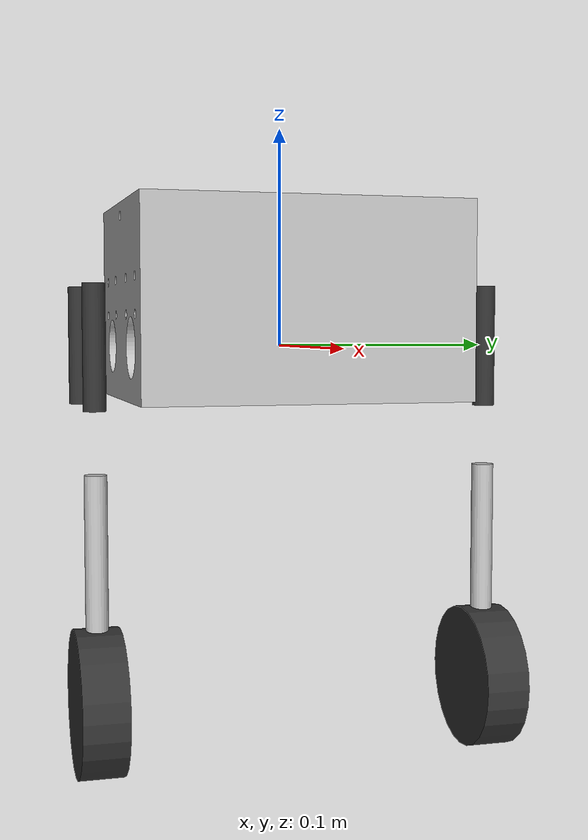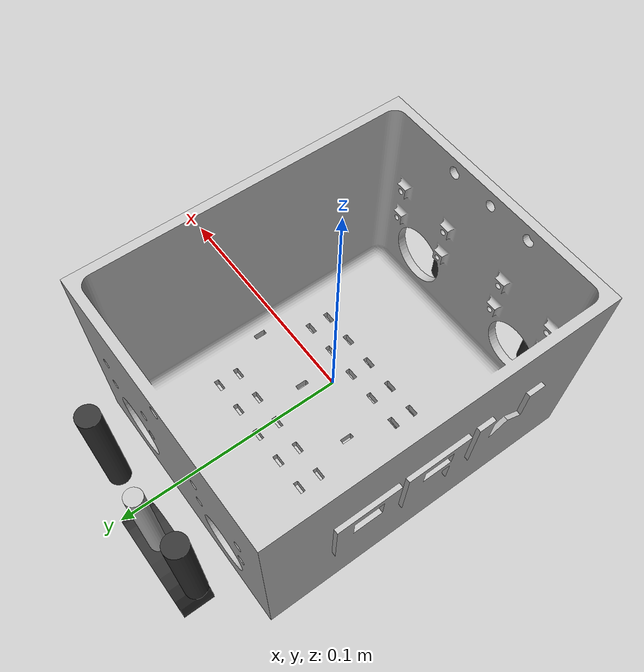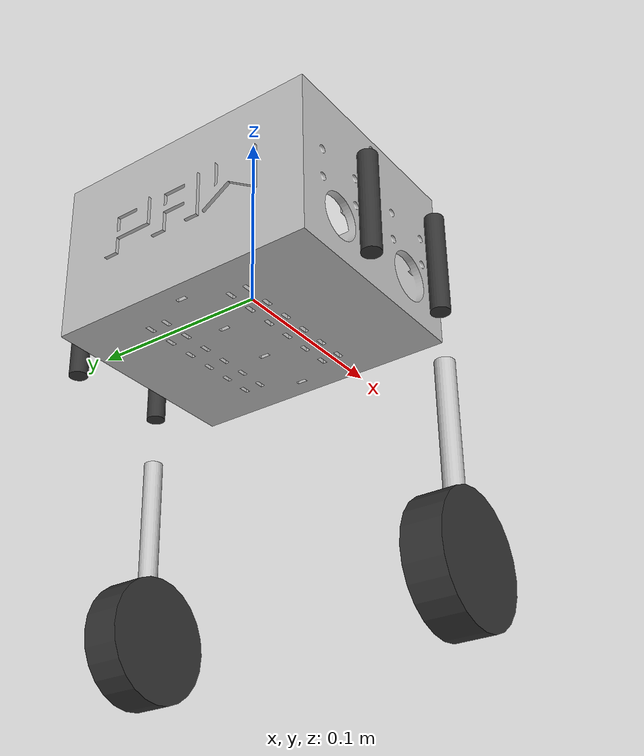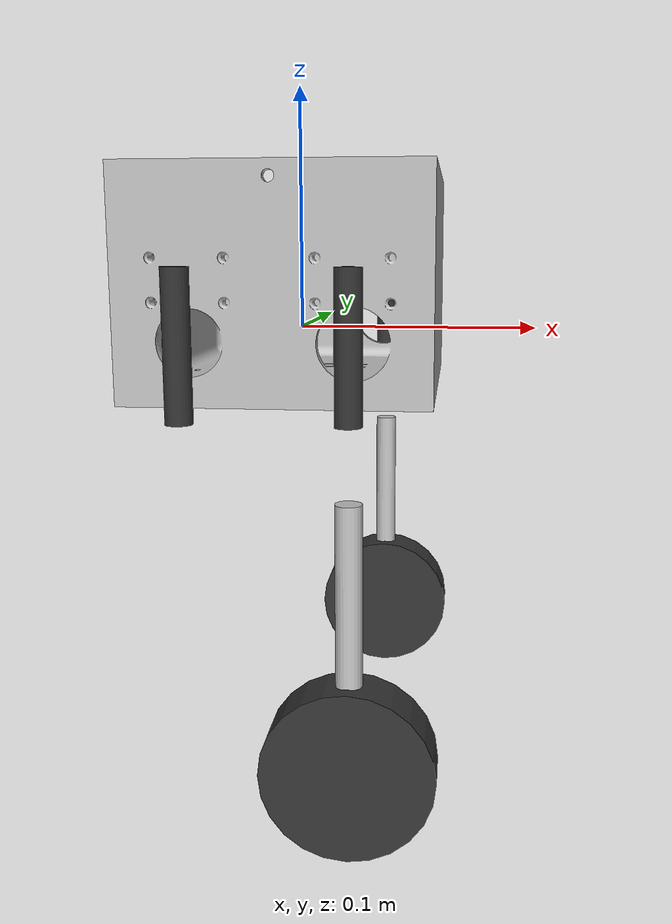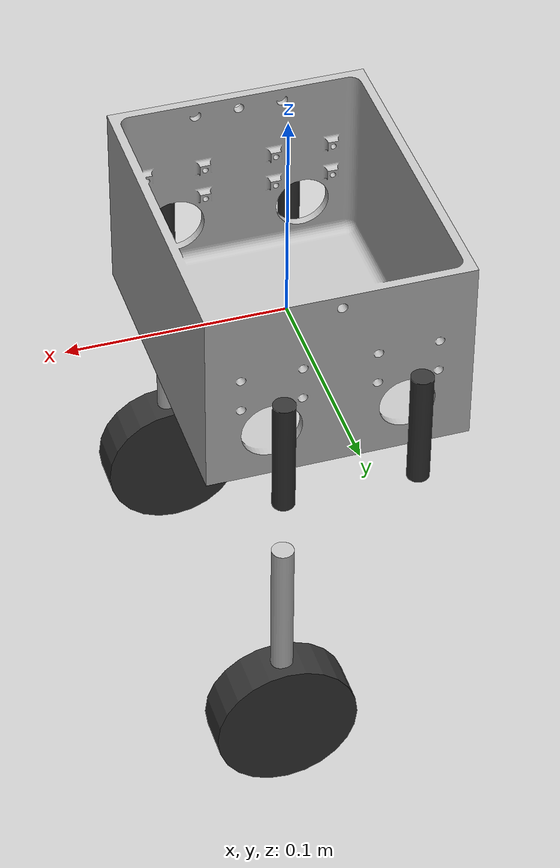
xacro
<?xml version="1.0" ?>
<robot name="bipedal" xmlns:xacro="http://www.ros.org/wiki/xacro">

  <!-- Materials -->
  <material name="silver">
    <color rgba="0.75 0.75 0.75 1.0"/>
  </material>

  <material name="dark_grey">
    <color rgba="0.2 0.2 0.2 1.0"/>
  </material>

  <!-- Base Link (Center of the robot) -->
  <link name="base_link">
    <inertial>
      <origin xyz="0 0 0.05" rpy="0 0 0"/>
      <mass value="0.3"/> <!-- 300g 3D printed body -->
      <inertia ixx="0.001" iyy="0.001" izz="0.001" ixy="0" iyz="0" ixz="0"/>
    </inertial>
    <visual>
      <!-- CAD origin was approx X=0.0535, Y=0.025, Z=-0.081 -->
      <!-- We rotate by -90 deg around Z to match ROS coords -->
      <origin xyz="-0.025 0.0535 0.081" rpy="0 0 -1.570796"/>
      <geometry>
        <mesh filename="package://bipedal_export_temp_description/meshes/base_link.stl" scale="0.001 0.001 0.001"/>
      </geometry>
      <material name="silver"/>
    </visual>
  </link>

  <!-- Battery -->
  <link name="battery">
    <inertial>
      <origin xyz="0 0 0" rpy="0 0 0"/>
      <mass value="0.260"/>
      <inertia ixx="0.0001" iyy="0.0001" izz="0.0001" ixy="0" iyz="0" ixz="0"/>
    </inertial>
  </link>
  <joint name="battery_joint" type="fixed">
    <origin xyz="0 0 -0.03" rpy="0 0 0"/> <!-- Below servo box -->
    <parent link="base_link"/>
    <child link="battery"/>
  </joint>

  <!-- Macro for Leg linkages -->
  <!-- Note: We only attach the femur and tibia to the FRONT servos to break the closed loop in URDF. -->
  <!-- The BACK servos are included but left unconnected to the tibia to satisfy the URDF tree requirement. -->

  <xacro:macro name="biped_leg" params="prefix side_y femur_mesh_front femur_mesh_back tibia_mesh">

    <!-- BACK SERVO (Left in local solver frame) -->
    <link name="${prefix}_back_servo">
      <inertial>
        <mass value="0.0535"/>
        <inertia ixx="0.00001" iyy="0.00001" izz="0.00001" ixy="0" iyz="0" ixz="0"/>
      </inertial>
    </link>
    <joint name="${prefix}_back_servo_joint" type="revolute">
      <!-- Back servo is at X=-30mm -->
      <origin xyz="-0.03 ${side_y} 0.0" rpy="0 0 0"/>
      <parent link="base_link"/>
      <child link="${prefix}_back_servo"/>
      <axis xyz="0 1 0"/>
      <limit lower="-3.14" upper="3.14" effort="10.0" velocity="5.0"/>
    </joint>

    <!-- FRONT SERVO (Right in local solver frame) -->
    <link name="${prefix}_front_servo">
      <inertial>
        <mass value="0.0535"/>
        <inertia ixx="0.00001" iyy="0.00001" izz="0.00001" ixy="0" iyz="0" ixz="0"/>
      </inertial>
    </link>
    <joint name="${prefix}_front_servo_joint" type="revolute">
      <!-- Front servo is at X=30mm -->
      <origin xyz="0.03 ${side_y} 0.0" rpy="0 0 0"/>
      <parent link="base_link"/>
      <child link="${prefix}_front_servo"/>
      <axis xyz="0 1 0"/>
      <limit lower="-3.14" upper="3.14" effort="10.0" velocity="5.0"/>
    </joint>

    <!-- BACK FEMUR -->
    <link name="${prefix}_back_femur">
      <inertial>
        <mass value="0.040"/>
        <inertia ixx="0.00001" iyy="0.00001" izz="0.00001" ixy="0" iyz="0" ixz="0"/>
      </inertial>
      <visual>
        <!-- Offset to rotate visual to match new coordinates -->
        <origin xyz="0 0 0" rpy="0 0 -1.570796"/>
        <geometry>
          <cylinder radius="0.005" length="0.055"/>
        </geometry>
        <material name="dark_grey"/>
      </visual>
    </link>
    <joint name="${prefix}_back_femur_joint" type="fixed">
      <origin xyz="0 0 0" rpy="0 0 0"/>
      <parent link="${prefix}_back_servo"/>
      <child link="${prefix}_back_femur"/>
    </joint>

    <!-- FRONT FEMUR -->
    <link name="${prefix}_front_femur">
      <inertial>
        <mass value="0.040"/>
        <inertia ixx="0.00001" iyy="0.00001" izz="0.00001" ixy="0" iyz="0" ixz="0"/>
      </inertial>
      <visual>
        <origin xyz="0 0 0" rpy="0 0 -1.570796"/>
        <geometry>
          <cylinder radius="0.005" length="0.055"/>
        </geometry>
        <material name="dark_grey"/>
      </visual>
    </link>
    <joint name="${prefix}_front_femur_joint" type="fixed">
      <origin xyz="0 0 0" rpy="0 0 0"/>
      <parent link="${prefix}_front_servo"/>
      <child link="${prefix}_front_femur"/>
    </joint>

    <!-- TIBIA (Attached to Front Femur to avoid closed loop) -->
    <link name="${prefix}_tibia">
      <inertial>
        <mass value="0.100"/>
        <inertia ixx="0.0001" iyy="0.0001" izz="0.0001" ixy="0" iyz="0" ixz="0"/>
      </inertial>
      <visual>
        <origin xyz="0 0 -0.05" rpy="0 0 0"/>
        <geometry>
          <cylinder radius="0.005" length="0.100"/>
        </geometry>
        <material name="silver"/>
      </visual>
    </link>
    <!-- Knee Joint connects front femur to tibia -->
    <joint name="${prefix}_knee_joint" type="revolute">
      <!-- Upper link is 55mm long, assume going straight down initially -->
      <origin xyz="0 0 -0.055" rpy="0 0 0"/>
      <parent link="${prefix}_front_femur"/>
      <child link="${prefix}_tibia"/>
      <axis xyz="0 1 0"/>
      <limit lower="-3.14" upper="3.14" effort="10.0" velocity="5.0"/>
    </joint>

    <!-- MOTOR & WHEEL -->
    <link name="${prefix}_motor">
      <inertial>
        <mass value="0.150"/> <!-- 150g JGA12V motor -->
        <inertia ixx="0.0001" iyy="0.0001" izz="0.0001" ixy="0" iyz="0" ixz="0"/>
      </inertial>
    </link>
    <joint name="${prefix}_ankle_joint" type="fixed">
      <!-- Lower link is 100mm long -->
      <origin xyz="0 0 -0.100" rpy="0 0 0"/>
      <parent link="${prefix}_tibia"/>
      <child link="${prefix}_motor"/>
    </joint>

    <link name="${prefix}_wheel">
      <inertial>
        <mass value="0.1"/>
        <inertia ixx="0.0001" iyy="0.0001" izz="0.0001" ixy="0" iyz="0" ixz="0"/>
      </inertial>
      <visual>
        <!-- Wheel 65mm diameter (radius 32.5mm) -->
        <origin xyz="0 0 0" rpy="1.570796 0 0"/>
        <geometry>
          <cylinder radius="0.0325" length="0.02"/>
        </geometry>
        <material name="dark_grey"/>
      </visual>
    </link>
    <joint name="${prefix}_wheel_joint" type="continuous">
      <origin xyz="0 0 0" rpy="0 0 0"/>
      <parent link="${prefix}_motor"/>
      <child link="${prefix}_wheel"/>
      <axis xyz="0 1 0"/>
    </joint>

  </xacro:macro>

  <!-- Instantiate Legs -->
  <!-- Leg 1 (Left Leg) is ID 6 (back), 14 (front). Y = 90mm (0.09) -->
  <xacro:biped_leg prefix="leg1" side_y="0.09" femur_mesh_front="dummy" femur_mesh_back="dummy" tibia_mesh="dummy"/>

  <!-- Leg 2 (Right Leg) is ID 0 (back), 1 (front). Y = -90mm (-0.09) -->
  <xacro:biped_leg prefix="leg2" side_y="-0.09" femur_mesh_front="dummy" femur_mesh_back="dummy" tibia_mesh="dummy"/>

</robot>
